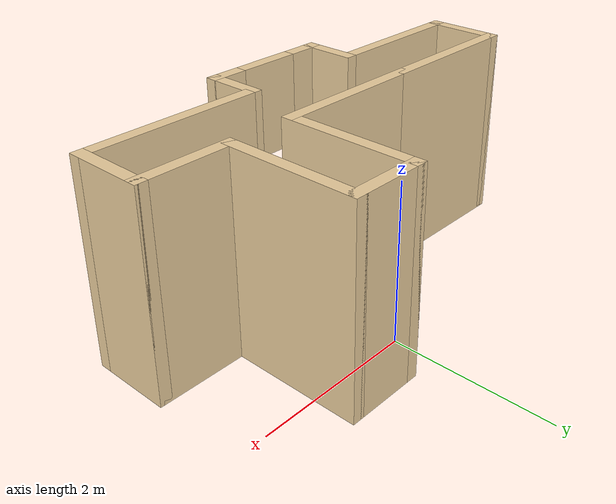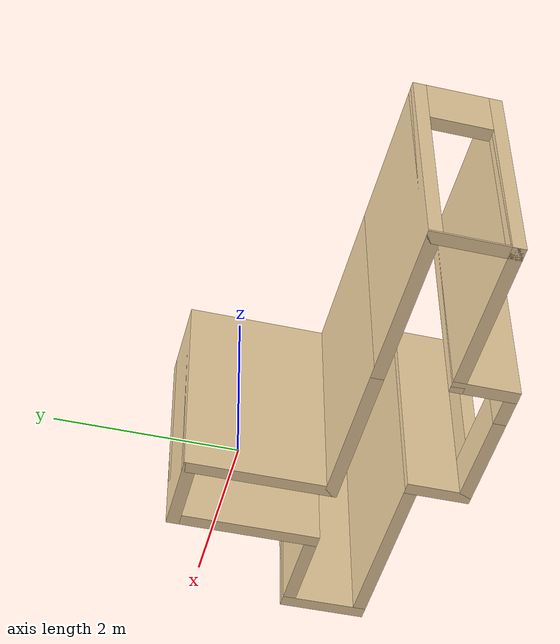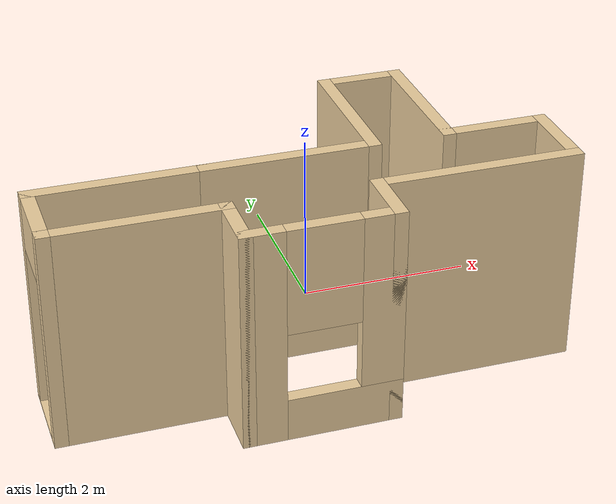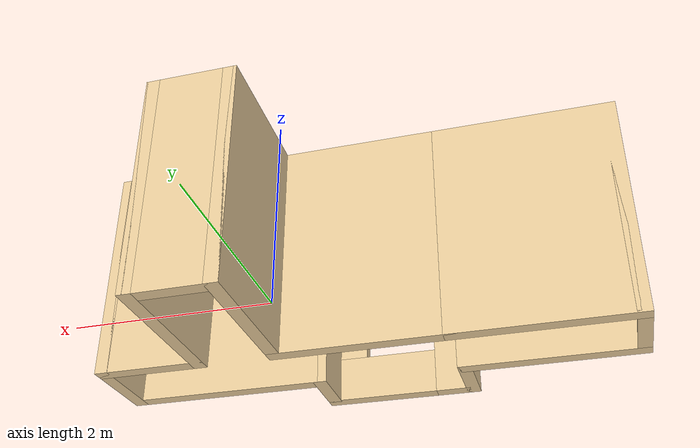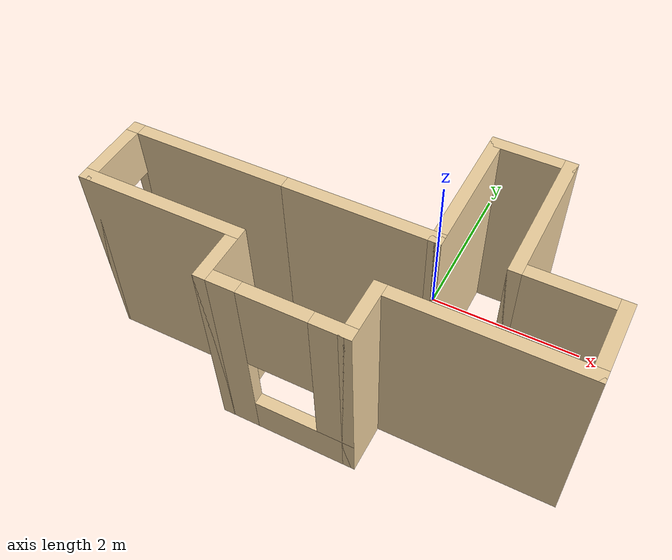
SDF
<?xml version='1.0'?>
<sdf version='1.6'>
  <model name='MyBuilding'>
    <pose frame=''>-0.485 -1.075 0 0 -0 0</pose>
    <link name='Wall_0'>
      <collision name='Wall_0_Collision'>
        <geometry>
          <box>
            <size>2 0.15 2.5</size>
          </box>
        </geometry>
        <pose frame=''>0 0 1.25 0 -0 0</pose>
      </collision>
      <visual name='Wall_0_Visual'>
        <pose frame=''>0 0 1.25 0 -0 0</pose>
        <geometry>
          <box>
            <size>2 0.15 2.5</size>
          </box>
        </geometry>
        <material>
          <script>
            <uri>file://media/materials/scripts/gazebo.material</uri>
            <name>Gazebo/Grey</name>
          </script>
          <ambient>0.921569 0.807843 0.615686 1</ambient>
        </material>
        <meta>
          <layer>0</layer>
        </meta>
      </visual>
      <pose frame=''>-1.9 -0.925 0 0 -0 0</pose>
    </link>
    <link name='Wall_1'>
      <collision name='Wall_1_Collision'>
        <geometry>
          <box>
            <size>0.75 0.15 2.5</size>
          </box>
        </geometry>
        <pose frame=''>0 0 1.25 0 -0 0</pose>
      </collision>
      <visual name='Wall_1_Visual'>
        <pose frame=''>0 0 1.25 0 -0 0</pose>
        <geometry>
          <box>
            <size>0.75 0.15 2.5</size>
          </box>
        </geometry>
        <material>
          <script>
            <uri>file://media/materials/scripts/gazebo.material</uri>
            <name>Gazebo/Grey</name>
          </script>
          <ambient>0.921569 0.807843 0.615686 1</ambient>
        </material>
        <meta>
          <layer>0</layer>
        </meta>
      </visual>
      <pose frame=''>-0.975 -1.225 0 0 0 -1.5708</pose>
    </link>
    <link name='Wall_12'>
      <collision name='Wall_12_Collision'>
        <geometry>
          <box>
            <size>1.75 0.15 2.5</size>
          </box>
        </geometry>
        <pose frame=''>0 0 1.25 0 -0 0</pose>
      </collision>
      <visual name='Wall_12_Visual'>
        <pose frame=''>0 0 1.25 0 -0 0</pose>
        <geometry>
          <box>
            <size>1.75 0.15 2.5</size>
          </box>
        </geometry>
        <material>
          <script>
            <uri>file://media/materials/scripts/gazebo.material</uri>
            <name>Gazebo/Grey</name>
          </script>
          <ambient>0.921569 0.807843 0.615686 1</ambient>
        </material>
        <meta>
          <layer>0</layer>
        </meta>
      </visual>
      <pose frame=''>0.875 0.725 0 0 -0 1.5708</pose>
    </link>
    <link name='Wall_13'>
      <collision name='Wall_13_Collision'>
        <geometry>
          <box>
            <size>1 0.15 2.5</size>
          </box>
        </geometry>
        <pose frame=''>0 0 1.25 0 -0 0</pose>
      </collision>
      <visual name='Wall_13_Visual'>
        <pose frame=''>0 0 1.25 0 -0 0</pose>
        <geometry>
          <box>
            <size>1 0.15 2.5</size>
          </box>
        </geometry>
        <material>
          <script>
            <uri>file://media/materials/scripts/gazebo.material</uri>
            <name>Gazebo/Grey</name>
          </script>
          <ambient>0.921569 0.807843 0.615686 1</ambient>
        </material>
        <meta>
          <layer>0</layer>
        </meta>
      </visual>
      <pose frame=''>1.3 1.525 0 0 -0 0</pose>
    </link>
    <link name='Wall_14'>
      <collision name='Wall_14_Collision'>
        <geometry>
          <box>
            <size>1.75 0.15 2.5</size>
          </box>
        </geometry>
        <pose frame=''>0 0 1.25 0 -0 0</pose>
      </collision>
      <visual name='Wall_14_Visual'>
        <pose frame=''>0 0 1.25 0 -0 0</pose>
        <geometry>
          <box>
            <size>1.75 0.15 2.5</size>
          </box>
        </geometry>
        <material>
          <script>
            <uri>file://media/materials/scripts/gazebo.material</uri>
            <name>Gazebo/Grey</name>
          </script>
          <ambient>0.921569 0.807843 0.615686 1</ambient>
        </material>
        <meta>
          <layer>0</layer>
        </meta>
      </visual>
      <pose frame=''>1.725 0.725 0 0 0 -1.5708</pose>
    </link>
    <link name='Wall_15'>
      <collision name='Wall_15_Collision'>
        <geometry>
          <box>
            <size>1.25 0.15 2.5</size>
          </box>
        </geometry>
        <pose frame=''>0 0 1.25 0 -0 0</pose>
      </collision>
      <visual name='Wall_15_Visual'>
        <pose frame=''>0 0 1.25 0 -0 0</pose>
        <geometry>
          <box>
            <size>1.25 0.15 2.5</size>
          </box>
        </geometry>
        <material>
          <script>
            <uri>file://media/materials/scripts/gazebo.material</uri>
            <name>Gazebo/Grey</name>
          </script>
          <ambient>0.921569 0.807843 0.615686 1</ambient>
        </material>
        <meta>
          <layer>0</layer>
        </meta>
      </visual>
      <pose frame=''>2.275 -0.075 0 0 -0 0</pose>
    </link>
    <link name='Wall_19'>
      <collision name='Wall_19_Collision'>
        <geometry>
          <box>
            <size>1 0.15 2.5</size>
          </box>
        </geometry>
        <pose frame=''>0 0 1.25 0 -0 0</pose>
      </collision>
      <visual name='Wall_19_Visual'>
        <pose frame=''>0 0 1.25 0 -0 0</pose>
        <geometry>
          <box>
            <size>1 0.15 2.5</size>
          </box>
        </geometry>
        <material>
          <script>
            <uri>file://media/materials/scripts/gazebo.material</uri>
            <name>Gazebo/Grey</name>
          </script>
          <ambient>0.921569 0.807843 0.615686 1</ambient>
        </material>
        <meta>
          <layer>0</layer>
        </meta>
      </visual>
      <pose frame=''>2.825 -0.5 0 0 0 -1.5708</pose>
    </link>
    <link name='Wall_21'>
      <collision name='Wall_21_Collision'>
        <geometry>
          <box>
            <size>2.25 0.15 2.5</size>
          </box>
        </geometry>
        <pose frame=''>0 0 1.25 0 -0 0</pose>
      </collision>
      <visual name='Wall_21_Visual'>
        <pose frame=''>0 0 1.25 0 -0 0</pose>
        <geometry>
          <box>
            <size>2.25 0.15 2.5</size>
          </box>
        </geometry>
        <material>
          <script>
            <uri>file://media/materials/scripts/gazebo.material</uri>
            <name>Gazebo/Grey</name>
          </script>
          <ambient>0.921569 0.807843 0.615686 1</ambient>
        </material>
        <meta>
          <layer>0</layer>
        </meta>
      </visual>
      <pose frame=''>1.775 -0.925 0 0 -0 3.14159</pose>
    </link>
    <link name='Wall_23'>
      <collision name='Wall_23_Collision'>
        <geometry>
          <box>
            <size>0.75 0.15 2.5</size>
          </box>
        </geometry>
        <pose frame=''>0 0 1.25 0 -0 0</pose>
      </collision>
      <visual name='Wall_23_Visual'>
        <pose frame=''>0 0 1.25 0 -0 0</pose>
        <geometry>
          <box>
            <size>0.75 0.15 2.5</size>
          </box>
        </geometry>
        <material>
          <script>
            <uri>file://media/materials/scripts/gazebo.material</uri>
            <name>Gazebo/Grey</name>
          </script>
          <ambient>0.921569 0.807843 0.615686 1</ambient>
        </material>
        <meta>
          <layer>0</layer>
        </meta>
      </visual>
      <pose frame=''>0.625 -1.225 0 0 -0 1.5708</pose>
    </link>
    <link name='Wall_3'>
      <pose frame=''>-0.175 -1.525 0 0 -0 0</pose>
      <visual name='Wall_3_Visual_0'>
        <pose frame=''>-0.6325 0 1.25 0 -0 0</pose>
        <geometry>
          <box>
            <size>0.485 0.15 2.5</size>
          </box>
        </geometry>
        <material>
          <script>
            <uri>file://media/materials/scripts/gazebo.material</uri>
            <name>Gazebo/Grey</name>
          </script>
          <ambient>0.921569 0.807843 0.615686 1</ambient>
        </material>
        <meta>
          <layer>0</layer>
        </meta>
      </visual>
      <collision name='Wall_3_Collision_0'>
        <geometry>
          <box>
            <size>0.485 0.15 2.5</size>
          </box>
        </geometry>
        <pose frame=''>-0.6325 0 1.25 0 -0 0</pose>
      </collision>
      <visual name='Wall_3_Visual_1'>
        <pose frame=''>0.2425 0 0.25 0 -0 0</pose>
        <geometry>
          <box>
            <size>1.265 0.15 0.5</size>
          </box>
        </geometry>
        <material>
          <script>
            <uri>file://media/materials/scripts/gazebo.material</uri>
            <name>Gazebo/Grey</name>
          </script>
          <ambient>0.921569 0.807843 0.615686 1</ambient>
        </material>
        <meta>
          <layer>0</layer>
        </meta>
      </visual>
      <collision name='Wall_3_Collision_1'>
        <geometry>
          <box>
            <size>1.265 0.15 0.5</size>
          </box>
        </geometry>
        <pose frame=''>0.2425 0 0.25 0 -0 0</pose>
      </collision>
      <visual name='Wall_3_Visual_2'>
        <pose frame=''>0.6425 0 1.5 0 -0 0</pose>
        <geometry>
          <box>
            <size>0.465 0.15 2</size>
          </box>
        </geometry>
        <material>
          <script>
            <uri>file://media/materials/scripts/gazebo.material</uri>
            <name>Gazebo/Grey</name>
          </script>
          <ambient>0.921569 0.807843 0.615686 1</ambient>
        </material>
        <meta>
          <layer>0</layer>
        </meta>
      </visual>
      <collision name='Wall_3_Collision_2'>
        <geometry>
          <box>
            <size>0.465 0.15 2</size>
          </box>
        </geometry>
        <pose frame=''>0.6425 0 1.5 0 -0 0</pose>
      </collision>
      <visual name='Wall_3_Visual_3'>
        <pose frame=''>0.01 0 1.9 0 -0 0</pose>
        <geometry>
          <box>
            <size>0.8 0.15 1.2</size>
          </box>
        </geometry>
        <material>
          <script>
            <uri>file://media/materials/scripts/gazebo.material</uri>
            <name>Gazebo/Grey</name>
          </script>
          <ambient>0.921569 0.807843 0.615686 1</ambient>
        </material>
        <meta>
          <layer>0</layer>
        </meta>
      </visual>
      <collision name='Wall_3_Collision_3'>
        <geometry>
          <box>
            <size>0.8 0.15 1.2</size>
          </box>
        </geometry>
        <pose frame=''>0.01 0 1.9 0 -0 0</pose>
      </collision>
    </link>
    <link name='Wall_7'>
      <pose frame=''>-2.825 -0.5 0 0 -0 1.5708</pose>
      <visual name='Wall_7_Visual_0'>
        <pose frame=''>-0.425 0 1.25 0 -0 0</pose>
        <geometry>
          <box>
            <size>0.15 0.15 2.5</size>
          </box>
        </geometry>
        <material>
          <script>
            <uri>file://media/materials/scripts/gazebo.material</uri>
            <name>Gazebo/Grey</name>
          </script>
          <ambient>0.921569 0.807843 0.615686 1</ambient>
        </material>
        <meta>
          <layer>0</layer>
        </meta>
      </visual>
      <collision name='Wall_7_Collision_0'>
        <geometry>
          <box>
            <size>0.15 0.15 2.5</size>
          </box>
        </geometry>
        <pose frame=''>-0.425 0 1.25 0 -0 0</pose>
      </collision>
      <visual name='Wall_7_Visual_1'>
        <pose frame=''>0.075 0 0.01 0 -0 0</pose>
        <geometry>
          <box>
            <size>0.85 0.15 0.02</size>
          </box>
        </geometry>
        <material>
          <script>
            <uri>file://media/materials/scripts/gazebo.material</uri>
            <name>Gazebo/Grey</name>
          </script>
          <ambient>0.921569 0.807843 0.615686 1</ambient>
        </material>
        <meta>
          <layer>0</layer>
        </meta>
      </visual>
      <collision name='Wall_7_Collision_1'>
        <geometry>
          <box>
            <size>0.85 0.15 0.02</size>
          </box>
        </geometry>
        <pose frame=''>0.075 0 0.01 0 -0 0</pose>
      </collision>
      <visual name='Wall_7_Visual_2'>
        <pose frame=''>0.425 0 1.26 0 -0 0</pose>
        <geometry>
          <box>
            <size>0.15 0.15 2.48</size>
          </box>
        </geometry>
        <material>
          <script>
            <uri>file://media/materials/scripts/gazebo.material</uri>
            <name>Gazebo/Grey</name>
          </script>
          <ambient>0.921569 0.807843 0.615686 1</ambient>
        </material>
        <meta>
          <layer>0</layer>
        </meta>
      </visual>
      <collision name='Wall_7_Collision_2'>
        <geometry>
          <box>
            <size>0.15 0.15 2.48</size>
          </box>
        </geometry>
        <pose frame=''>0.425 0 1.26 0 -0 0</pose>
      </collision>
      <visual name='Wall_7_Visual_3'>
        <pose frame=''>0 0 2.209 0 -0 0</pose>
        <geometry>
          <box>
            <size>0.7 0.15 0.582</size>
          </box>
        </geometry>
        <material>
          <script>
            <uri>file://media/materials/scripts/gazebo.material</uri>
            <name>Gazebo/Grey</name>
          </script>
          <ambient>0.921569 0.807843 0.615686 1</ambient>
        </material>
        <meta>
          <layer>0</layer>
        </meta>
      </visual>
      <collision name='Wall_7_Collision_3'>
        <geometry>
          <box>
            <size>0.7 0.15 0.582</size>
          </box>
        </geometry>
        <pose frame=''>0 0 2.209 0 -0 0</pose>
      </collision>
    </link>
    <link name='Wall_8'>
      <collision name='Wall_8_Collision'>
        <geometry>
          <box>
            <size>2 0.15 2.5</size>
          </box>
        </geometry>
        <pose frame=''>0 0 1.25 0 -0 0</pose>
      </collision>
      <visual name='Wall_8_Visual'>
        <pose frame=''>0 0 1.25 0 -0 0</pose>
        <geometry>
          <box>
            <size>2 0.15 2.5</size>
          </box>
        </geometry>
        <material>
          <script>
            <uri>file://media/materials/scripts/gazebo.material</uri>
            <name>Gazebo/Grey</name>
          </script>
          <ambient>0.921569 0.807843 0.615686 1</ambient>
        </material>
        <meta>
          <layer>0</layer>
        </meta>
      </visual>
      <pose frame=''>-1.9 -0.075 0 0 -0 0</pose>
    </link>
    <link name='Wall_9'>
      <collision name='Wall_9_Collision'>
        <geometry>
          <box>
            <size>2 0.15 2.5</size>
          </box>
        </geometry>
        <pose frame=''>0 0 1.25 0 -0 0</pose>
      </collision>
      <visual name='Wall_9_Visual'>
        <pose frame=''>0 0 1.25 0 -0 0</pose>
        <geometry>
          <box>
            <size>2 0.15 2.5</size>
          </box>
        </geometry>
        <material>
          <script>
            <uri>file://media/materials/scripts/gazebo.material</uri>
            <name>Gazebo/Grey</name>
          </script>
          <ambient>0.921569 0.807843 0.615686 1</ambient>
        </material>
        <meta>
          <layer>0</layer>
        </meta>
      </visual>
      <pose frame=''>-0.05 -0.075 0 0 -0 0</pose>
    </link>
    <static>1</static>
  </model>
</sdf>
